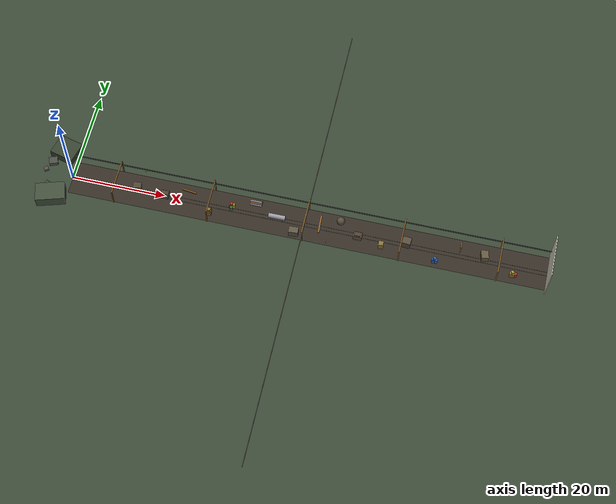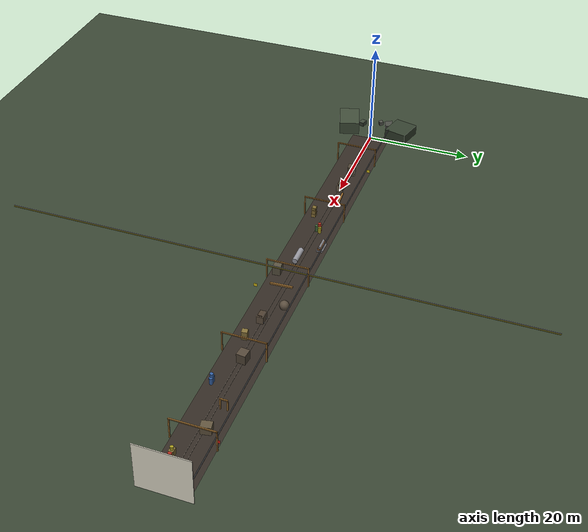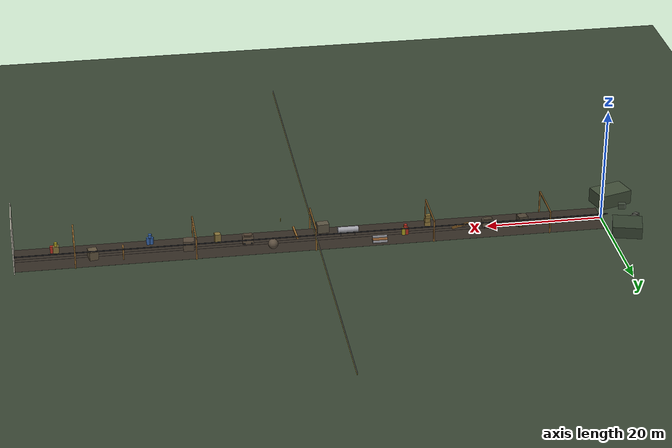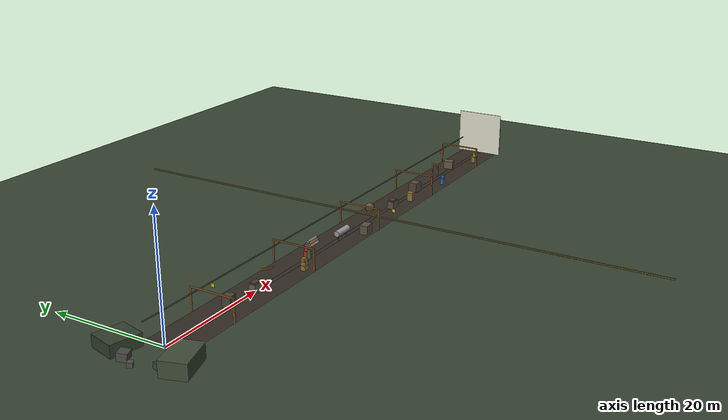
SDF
<sdf version="1.7">
 <world name="default">
  <model name="rock_pile_01">
   <static>1</static>
   <link name="link">
    <collision name="c"><geometry><box><size>1.6 1.4 1.8</size></box></geometry></collision>
    <visual name="v">
     <geometry><box><size>1.6 1.4 1.8</size></box></geometry>
     <material><ambient>0.25 0.22 0.18 1</ambient><diffuse>0.30 0.26 0.20 1</diffuse></material>
    </visual>
   </link>
   <pose>14.0 0.3 0.9 0 0 0.15</pose>
  </model>
  <model name="mine_cart_01">
   <static>1</static>
   <link name="link">
    <collision name="cart_body">
     <pose>0 0 0.7 0 0 0</pose>
     <geometry><box><size>1.8 1.2 1.4</size></box></geometry>
    </collision>
    <visual name="cart_body_v">
     <pose>0 0 0.7 0 0 0</pose>
     <geometry><box><size>1.8 1.2 1.4</size></box></geometry>
     <material><ambient>0.35 0.30 0.25 1</ambient><diffuse>0.40 0.35 0.28 1</diffuse></material>
    </visual>
    <visual name="ore_load">
     <pose>0 0 1.5 0 0 0</pose>
     <geometry><box><size>1.5 0.9 0.2</size></box></geometry>
     <material><ambient>0.20 0.18 0.15 1</ambient><diffuse>0.28 0.24 0.18 1</diffuse></material>
    </visual>
    <collision name="ore_c">
     <pose>0 0 1.5 0 0 0</pose>
     <geometry><box><size>1.5 0.9 0.2</size></box></geometry>
    </collision>
    <visual name="wheel_fl">
     <pose>0.6 0.65 0.15 1.5708 0 0</pose>
     <geometry><cylinder><radius>0.15</radius><length>0.08</length></cylinder></geometry>
     <material><ambient>0.15 0.15 0.15 1</ambient></material>
    </visual>
    <visual name="wheel_fr">
     <pose>0.6 -0.65 0.15 1.5708 0 0</pose>
     <geometry><cylinder><radius>0.15</radius><length>0.08</length></cylinder></geometry>
     <material><ambient>0.15 0.15 0.15 1</ambient></material>
    </visual>
    <visual name="wheel_rl">
     <pose>-0.6 0.65 0.15 1.5708 0 0</pose>
     <geometry><cylinder><radius>0.15</radius><length>0.08</length></cylinder></geometry>
     <material><ambient>0.15 0.15 0.15 1</ambient></material>
    </visual>
    <visual name="wheel_rr">
     <pose>-0.6 -0.65 0.15 1.5708 0 0</pose>
     <geometry><cylinder><radius>0.15</radius><length>0.08</length></cylinder></geometry>
     <material><ambient>0.15 0.15 0.15 1</ambient></material>
    </visual>
   </link>
   <pose>20.0 0.0 0.0 0 0 0</pose>
  </model>
  <model name="timber_beam_01">
   <static>1</static>
   <link name="link">
    <collision name="c"><geometry><box><size>3.0 0.30 0.30</size></box></geometry></collision>
    <visual name="v">
     <geometry><box><size>3.0 0.30 0.30</size></box></geometry>
     <material><ambient>0.45 0.30 0.12 1</ambient><diffuse>0.55 0.38 0.15 1</diffuse></material>
    </visual>
   </link>
   <pose>25.0 1.5 1.4 0 0.25 0</pose>
  </model>
  <model name="crate_stack_01">
   <static>1</static>
   <link name="link">
    <collision name="c1">
     <pose>0 0 0.4 0 0 0</pose>
     <geometry><box><size>1.0 0.8 0.8</size></box></geometry>
    </collision>
    <visual name="v1">
     <pose>0 0 0.4 0 0 0</pose>
     <geometry><box><size>1.0 0.8 0.8</size></box></geometry>
     <material><ambient>0.50 0.42 0.20 1</ambient><diffuse>0.55 0.45 0.22 1</diffuse></material>
    </visual>
    <collision name="c2">
     <pose>0.05 0.03 1.1 0 0 0.05</pose>
     <geometry><box><size>0.95 0.75 0.8</size></box></geometry>
    </collision>
    <visual name="v2">
     <pose>0.05 0.03 1.1 0 0 0.05</pose>
     <geometry><box><size>0.95 0.75 0.8</size></box></geometry>
     <material><ambient>0.48 0.40 0.18 1</ambient><diffuse>0.52 0.43 0.20 1</diffuse></material>
    </visual>
    <collision name="c3">
     <pose>-0.05 0.05 1.75 0 0 -0.08</pose>
     <geometry><box><size>0.85 0.7 0.5</size></box></geometry>
    </collision>
    <visual name="v3">
     <pose>-0.05 0.05 1.75 0 0 -0.08</pose>
     <geometry><box><size>0.85 0.7 0.5</size></box></geometry>
     <material><ambient>0.45 0.38 0.16 1</ambient><diffuse>0.50 0.42 0.19 1</diffuse></material>
    </visual>
   </link>
   <pose>30.0 -2.0 0.0 0 0 0</pose>
  </model>
  <model name="barrel_cluster_01">
   <static>1</static>
   <link name="link">
    <collision name="b1">
     <pose>0 0 0.6 0 0 0</pose>
     <geometry><cylinder><radius>0.32</radius><length>1.2</length></cylinder></geometry>
    </collision>
    <visual name="b1v">
     <pose>0 0 0.6 0 0 0</pose>
     <geometry><cylinder><radius>0.32</radius><length>1.2</length></cylinder></geometry>
     <material><ambient>0.60 0.15 0.10 1</ambient><diffuse>0.70 0.18 0.12 1</diffuse></material>
    </visual>
    <collision name="b2">
     <pose>0.58 0.15 0.6 0 0 0</pose>
     <geometry><cylinder><radius>0.32</radius><length>1.2</length></cylinder></geometry>
    </collision>
    <visual name="b2v">
     <pose>0.58 0.15 0.6 0 0 0</pose>
     <geometry><cylinder><radius>0.32</radius><length>1.2</length></cylinder></geometry>
     <material><ambient>0.55 0.55 0.10 1</ambient><diffuse>0.65 0.60 0.12 1</diffuse></material>
    </visual>
    <collision name="b3">
     <pose>0.25 -0.50 0.6 0 0 0</pose>
     <geometry><cylinder><radius>0.32</radius><length>1.2</length></cylinder></geometry>
    </collision>
    <visual name="b3v">
     <pose>0.25 -0.50 0.6 0 0 0</pose>
     <geometry><cylinder><radius>0.32</radius><length>1.2</length></cylinder></geometry>
     <material><ambient>0.20 0.35 0.20 1</ambient><diffuse>0.25 0.40 0.22 1</diffuse></material>
    </visual>
    <collision name="b4">
     <pose>0.25 0.0 1.5 0 0 0</pose>
     <geometry><cylinder><radius>0.30</radius><length>0.6</length></cylinder></geometry>
    </collision>
    <visual name="b4v">
     <pose>0.25 0.0 1.5 0 0 0</pose>
     <geometry><cylinder><radius>0.30</radius><length>0.6</length></cylinder></geometry>
     <material><ambient>0.60 0.15 0.10 1</ambient><diffuse>0.70 0.18 0.12 1</diffuse></material>
    </visual>
   </link>
   <pose>34.0 0.5 0.0 0 0 0</pose>
  </model>
  <model name="pipe_stack_01">
   <static>1</static>
   <link name="link">
    <collision name="p1">
     <pose>0 -0.40 0.22 0 1.5708 0</pose>
     <geometry><cylinder><radius>0.22</radius><length>2.5</length></cylinder></geometry>
    </collision>
    <visual name="p1v">
     <pose>0 -0.40 0.22 0 1.5708 0</pose>
     <geometry><cylinder><radius>0.22</radius><length>2.5</length></cylinder></geometry>
     <material><ambient>0.40 0.40 0.42 1</ambient><diffuse>0.50 0.50 0.52 1</diffuse></material>
    </visual>
    <collision name="p2">
     <pose>0 0.0 0.22 0 1.5708 0</pose>
     <geometry><cylinder><radius>0.22</radius><length>2.5</length></cylinder></geometry>
    </collision>
    <visual name="p2v">
     <pose>0 0.0 0.22 0 1.5708 0</pose>
     <geometry><cylinder><radius>0.22</radius><length>2.5</length></cylinder></geometry>
     <material><ambient>0.40 0.40 0.42 1</ambient><diffuse>0.50 0.50 0.52 1</diffuse></material>
    </visual>
    <collision name="p3">
     <pose>0 0.40 0.22 0 1.5708 0</pose>
     <geometry><cylinder><radius>0.22</radius><length>2.5</length></cylinder></geometry>
    </collision>
    <visual name="p3v">
     <pose>0 0.40 0.22 0 1.5708 0</pose>
     <geometry><cylinder><radius>0.22</radius><length>2.5</length></cylinder></geometry>
     <material><ambient>0.40 0.40 0.42 1</ambient><diffuse>0.50 0.50 0.52 1</diffuse></material>
    </visual>
    <collision name="p4">
     <pose>0 -0.20 0.60 0 1.5708 0</pose>
     <geometry><cylinder><radius>0.22</radius><length>2.5</length></cylinder></geometry>
    </collision>
    <visual name="p4v">
     <pose>0 -0.20 0.60 0 1.5708 0</pose>
     <geometry><cylinder><radius>0.22</radius><length>2.5</length></cylinder></geometry>
     <material><ambient>0.45 0.30 0.15 1</ambient><diffuse>0.55 0.35 0.18 1</diffuse></material>
    </visual>
    <collision name="p5">
     <pose>0 0.20 0.60 0 1.5708 0</pose>
     <geometry><cylinder><radius>0.22</radius><length>2.5</length></cylinder></geometry>
    </collision>
    <visual name="p5v">
     <pose>0 0.20 0.60 0 1.5708 0</pose>
     <geometry><cylinder><radius>0.22</radius><length>2.5</length></cylinder></geometry>
     <material><ambient>0.45 0.30 0.15 1</ambient><diffuse>0.55 0.35 0.18 1</diffuse></material>
    </visual>
    <collision name="p6">
     <pose>0 0.0 0.98 0 1.5708 0</pose>
     <geometry><cylinder><radius>0.22</radius><length>2.5</length></cylinder></geometry>
    </collision>
    <visual name="p6v">
     <pose>0 0.0 0.98 0 1.5708 0</pose>
     <geometry><cylinder><radius>0.22</radius><length>2.5</length></cylinder></geometry>
     <material><ambient>0.40 0.40 0.42 1</ambient><diffuse>0.50 0.50 0.52 1</diffuse></material>
    </visual>
   </link>
   <pose>39.0 2.5 0.0 0 0 0</pose>
  </model>
  <model name="vent_duct_01">
   <static>1</static>
   <link name="link">
    <collision name="c">
     <pose>0 0 0 0 1.5708 0</pose>
     <geometry><cylinder><radius>0.50</radius><length>3.5</length></cylinder></geometry>
    </collision>
    <visual name="v">
     <pose>0 0 0 0 1.5708 0</pose>
     <geometry><cylinder><radius>0.50</radius><length>3.5</length></cylinder></geometry>
     <material><ambient>0.50 0.50 0.52 1</ambient><diffuse>0.60 0.60 0.63 1</diffuse></material>
    </visual>
    <visual name="bracket1">
     <pose>-1.2 0 -0.6 0 0 0</pose>
     <geometry><box><size>0.10 0.10 1.2</size></box></geometry>
     <material><ambient>0.30 0.30 0.32 1</ambient></material>
    </visual>
    <collision name="br1">
     <pose>-1.2 0 -0.6 0 0 0</pose>
     <geometry><box><size>0.10 0.10 1.2</size></box></geometry>
    </collision>
    <visual name="bracket2">
     <pose>1.2 0 -0.6 0 0 0</pose>
     <geometry><box><size>0.10 0.10 1.2</size></box></geometry>
     <material><ambient>0.30 0.30 0.32 1</ambient></material>
    </visual>
    <collision name="br2">
     <pose>1.2 0 -0.6 0 0 0</pose>
     <geometry><box><size>0.10 0.10 1.2</size></box></geometry>
    </collision>
   </link>
   <pose>44.0 -0.2 1.3 0 0 0</pose>
  </model>
  <model name="rubble_01">
   <static>1</static>
   <link name="link">
    <collision name="c"><geometry><box><size>2.0 1.4 1.6</size></box></geometry></collision>
    <visual name="v">
     <geometry><box><size>2.0 1.4 1.6</size></box></geometry>
     <material><ambient>0.30 0.28 0.22 1</ambient><diffuse>0.35 0.32 0.25 1</diffuse></material>
    </visual>
   </link>
   <pose>48.0 -2.5 0.8 0 0 0.08</pose>
  </model>
  <model name="timber_beam_02">
   <static>1</static>
   <link name="link">
    <collision name="c"><geometry><box><size>0.30 4.0 0.30</size></box></geometry></collision>
    <visual name="v">
     <geometry><box><size>0.30 4.0 0.30</size></box></geometry>
     <material><ambient>0.50 0.35 0.15 1</ambient><diffuse>0.60 0.42 0.18 1</diffuse></material>
    </visual>
   </link>
   <pose>53.0 0.0 1.5 0 0 0.05</pose>
  </model>
  <model name="rock_boulder_01">
   <static>1</static>
   <link name="link">
    <collision name="c"><geometry><sphere><radius>0.85</radius></sphere></geometry></collision>
    <visual name="v">
     <geometry><sphere><radius>0.85</radius></sphere></geometry>
     <material><ambient>0.28 0.25 0.20 1</ambient><diffuse>0.35 0.30 0.24 1</diffuse></material>
    </visual>
   </link>
   <pose>57.0 2.0 0.85 0 0 0</pose>
  </model>
  <model name="mine_cart_02">
   <static>1</static>
   <link name="link">
    <collision name="cart_body">
     <pose>0 0 0.7 0 0 0</pose>
     <geometry><box><size>1.8 1.2 1.4</size></box></geometry>
    </collision>
    <visual name="cart_body_v">
     <pose>0 0 0.7 0 0 0</pose>
     <geometry><box><size>1.8 1.2 1.4</size></box></geometry>
     <material><ambient>0.32 0.28 0.22 1</ambient><diffuse>0.38 0.32 0.25 1</diffuse></material>
    </visual>
    <visual name="ore">
     <pose>0 0 1.5 0 0 0</pose>
     <geometry><box><size>1.4 0.9 0.2</size></box></geometry>
     <material><ambient>0.22 0.18 0.14 1</ambient><diffuse>0.30 0.24 0.18 1</diffuse></material>
    </visual>
    <collision name="ore_c">
     <pose>0 0 1.5 0 0 0</pose>
     <geometry><box><size>1.4 0.9 0.2</size></box></geometry>
    </collision>
    <visual name="wfl">
     <pose>0.6 0.65 0.15 1.5708 0 0</pose>
     <geometry><cylinder><radius>0.15</radius><length>0.08</length></cylinder></geometry>
     <material><ambient>0.15 0.15 0.15 1</ambient></material>
    </visual>
    <visual name="wfr">
     <pose>0.6 -0.65 0.15 1.5708 0 0</pose>
     <geometry><cylinder><radius>0.15</radius><length>0.08</length></cylinder></geometry>
     <material><ambient>0.15 0.15 0.15 1</ambient></material>
    </visual>
    <visual name="wrl">
     <pose>-0.6 0.65 0.15 1.5708 0 0</pose>
     <geometry><cylinder><radius>0.15</radius><length>0.08</length></cylinder></geometry>
     <material><ambient>0.15 0.15 0.15 1</ambient></material>
    </visual>
    <visual name="wrr">
     <pose>-0.6 -0.65 0.15 1.5708 0 0</pose>
     <geometry><cylinder><radius>0.15</radius><length>0.08</length></cylinder></geometry>
     <material><ambient>0.15 0.15 0.15 1</ambient></material>
    </visual>
   </link>
   <pose>61.0 -0.5 0.0 0 0 0</pose>
  </model>
  <model name="crate_02">
   <static>1</static>
   <link name="link">
    <collision name="c">
     <pose>0 0 0.8 0 0 0</pose>
     <geometry><box><size>1.0 1.0 1.6</size></box></geometry>
    </collision>
    <visual name="v">
     <pose>0 0 0.8 0 0 0</pose>
     <geometry><box><size>1.0 1.0 1.6</size></box></geometry>
     <material><ambient>0.45 0.38 0.18 1</ambient><diffuse>0.52 0.44 0.22 1</diffuse></material>
    </visual>
   </link>
   <pose>66.0 -1.5 0.0 0 0 0.12</pose>
  </model>
  <model name="rock_pile_02">
   <static>1</static>
   <link name="link">
    <collision name="c"><geometry><box><size>1.8 1.6 1.8</size></box></geometry></collision>
    <visual name="v">
     <geometry><box><size>1.8 1.6 1.8</size></box></geometry>
     <material><ambient>0.28 0.24 0.18 1</ambient><diffuse>0.33 0.28 0.22 1</diffuse></material>
    </visual>
   </link>
   <pose>71.0 0.2 0.9 0 0 -0.1</pose>
  </model>
  <model name="barrel_pair_01">
   <static>1</static>
   <link name="link">
    <collision name="b1">
     <pose>0 0 0.6 0 0 0</pose>
     <geometry><cylinder><radius>0.32</radius><length>1.2</length></cylinder></geometry>
    </collision>
    <visual name="b1v">
     <pose>0 0 0.6 0 0 0</pose>
     <geometry><cylinder><radius>0.32</radius><length>1.2</length></cylinder></geometry>
     <material><ambient>0.15 0.30 0.55 1</ambient><diffuse>0.20 0.38 0.65 1</diffuse></material>
    </visual>
    <collision name="b2">
     <pose>0.58 0.0 0.6 0 0 0</pose>
     <geometry><cylinder><radius>0.32</radius><length>1.2</length></cylinder></geometry>
    </collision>
    <visual name="b2v">
     <pose>0.58 0.0 0.6 0 0 0</pose>
     <geometry><cylinder><radius>0.32</radius><length>1.2</length></cylinder></geometry>
     <material><ambient>0.15 0.30 0.55 1</ambient><diffuse>0.20 0.38 0.65 1</diffuse></material>
    </visual>
    <collision name="b3">
     <pose>0.28 0.0 1.55 0 0 0</pose>
     <geometry><cylinder><radius>0.30</radius><length>0.6</length></cylinder></geometry>
    </collision>
    <visual name="b3v">
     <pose>0.28 0.0 1.55 0 0 0</pose>
     <geometry><cylinder><radius>0.30</radius><length>0.6</length></cylinder></geometry>
     <material><ambient>0.15 0.30 0.55 1</ambient><diffuse>0.20 0.38 0.65 1</diffuse></material>
    </visual>
   </link>
   <pose>77.0 -2.5 0.0 0 0 0</pose>
  </model>
  <model name="timber_frame_01">
   <static>1</static>
   <link name="link">
    <collision name="lp">
     <pose>0 -0.6 1.0 0 0 0</pose>
     <geometry><box><size>0.20 0.20 2.0</size></box></geometry>
    </collision>
    <visual name="lpv">
     <pose>0 -0.6 1.0 0 0 0</pose>
     <geometry><box><size>0.20 0.20 2.0</size></box></geometry>
     <material><ambient>0.50 0.35 0.15 1</ambient><diffuse>0.60 0.42 0.18 1</diffuse></material>
    </visual>
    <collision name="rp">
     <pose>0 0.6 1.0 0 0 0</pose>
     <geometry><box><size>0.20 0.20 2.0</size></box></geometry>
    </collision>
    <visual name="rpv">
     <pose>0 0.6 1.0 0 0 0</pose>
     <geometry><box><size>0.20 0.20 2.0</size></box></geometry>
     <material><ambient>0.50 0.35 0.15 1</ambient><diffuse>0.60 0.42 0.18 1</diffuse></material>
    </visual>
    <collision name="cb">
     <pose>0 0.0 2.05 0 0 0</pose>
     <geometry><box><size>0.20 1.4 0.20</size></box></geometry>
    </collision>
    <visual name="cbv">
     <pose>0 0.0 2.05 0 0 0</pose>
     <geometry><box><size>0.20 1.4 0.20</size></box></geometry>
     <material><ambient>0.50 0.35 0.15 1</ambient><diffuse>0.60 0.42 0.18 1</diffuse></material>
    </visual>
   </link>
   <pose>82.0 1.5 0.0 0 0 0</pose>
  </model>
  <model name="rubble_02">
   <static>1</static>
   <link name="link">
    <collision name="c"><geometry><box><size>1.5 1.8 1.5</size></box></geometry></collision>
    <visual name="v">
     <geometry><box><size>1.5 1.8 1.5</size></box></geometry>
     <material><ambient>0.32 0.28 0.20 1</ambient><diffuse>0.38 0.33 0.24 1</diffuse></material>
    </visual>
   </link>
   <pose>87.0 0.8 0.75 0 0 0.2</pose>
  </model>
  <model name="crate_barrel_01">
   <static>1</static>
   <link name="link">
    <collision name="crate">
     <pose>0 0 0.6 0 0 0</pose>
     <geometry><box><size>1.0 0.8 1.2</size></box></geometry>
    </collision>
    <visual name="cratev">
     <pose>0 0 0.6 0 0 0</pose>
     <geometry><box><size>1.0 0.8 1.2</size></box></geometry>
     <material><ambient>0.45 0.38 0.18 1</ambient><diffuse>0.52 0.44 0.22 1</diffuse></material>
    </visual>
    <collision name="barrel">
     <pose>0.7 0.0 0.6 0 0 0</pose>
     <geometry><cylinder><radius>0.30</radius><length>1.2</length></cylinder></geometry>
    </collision>
    <visual name="barrelv">
     <pose>0.7 0.0 0.6 0 0 0</pose>
     <geometry><cylinder><radius>0.30</radius><length>1.2</length></cylinder></geometry>
     <material><ambient>0.60 0.15 0.10 1</ambient><diffuse>0.70 0.18 0.12 1</diffuse></material>
    </visual>
    <collision name="top_b">
     <pose>0 0 1.5 0 0 0</pose>
     <geometry><cylinder><radius>0.28</radius><length>0.6</length></cylinder></geometry>
    </collision>
    <visual name="top_bv">
     <pose>0 0 1.5 0 0 0</pose>
     <geometry><cylinder><radius>0.28</radius><length>0.6</length></cylinder></geometry>
     <material><ambient>0.55 0.55 0.10 1</ambient><diffuse>0.65 0.60 0.12 1</diffuse></material>
    </visual>
   </link>
   <pose>93.0 -2.0 0.0 0 0 0</pose>
  </model>
  <model name="support_frame_10">
   <static>1</static>
   <link name="link">
    <visual name="left_post">
     <pose>0 -3.8 2.0 0 0 0</pose>
     <geometry><box><size>0.20 0.20 4.0</size></box></geometry>
     <material><ambient>0.50 0.35 0.15 1</ambient><diffuse>0.60 0.42 0.18 1</diffuse></material>
    </visual>
    <visual name="right_post">
     <pose>0 3.8 2.0 0 0 0</pose>
     <geometry><box><size>0.20 0.20 4.0</size></box></geometry>
     <material><ambient>0.50 0.35 0.15 1</ambient><diffuse>0.60 0.42 0.18 1</diffuse></material>
    </visual>
    <visual name="crossbeam">
     <pose>0 0.0 3.9 0 0 0</pose>
     <geometry><box><size>0.20 7.8 0.20</size></box></geometry>
     <material><ambient>0.50 0.35 0.15 1</ambient><diffuse>0.60 0.42 0.18 1</diffuse></material>
    </visual>
   </link>
   <pose>10.0 0 0 0 0 0</pose>
  </model>
  <model name="support_frame_30">
   <static>1</static>
   <link name="link">
    <visual name="left_post">
     <pose>0 -3.8 2.0 0 0 0</pose>
     <geometry><box><size>0.20 0.20 4.0</size></box></geometry>
     <material><ambient>0.48 0.33 0.14 1</ambient><diffuse>0.58 0.40 0.17 1</diffuse></material>
    </visual>
    <visual name="right_post">
     <pose>0 3.8 2.0 0 0 0</pose>
     <geometry><box><size>0.20 0.20 4.0</size></box></geometry>
     <material><ambient>0.48 0.33 0.14 1</ambient><diffuse>0.58 0.40 0.17 1</diffuse></material>
    </visual>
    <visual name="crossbeam">
     <pose>0 0.0 3.9 0 0 0</pose>
     <geometry><box><size>0.20 7.8 0.20</size></box></geometry>
     <material><ambient>0.48 0.33 0.14 1</ambient><diffuse>0.58 0.40 0.17 1</diffuse></material>
    </visual>
   </link>
   <pose>30.0 0 0 0 0 0</pose>
  </model>
  <model name="support_frame_50">
   <static>1</static>
   <link name="link">
    <visual name="left_post">
     <pose>0 -3.8 2.0 0 0 0</pose>
     <geometry><box><size>0.20 0.20 4.0</size></box></geometry>
     <material><ambient>0.50 0.35 0.15 1</ambient><diffuse>0.60 0.42 0.18 1</diffuse></material>
    </visual>
    <visual name="right_post">
     <pose>0 3.8 2.0 0 0 0</pose>
     <geometry><box><size>0.20 0.20 4.0</size></box></geometry>
     <material><ambient>0.50 0.35 0.15 1</ambient><diffuse>0.60 0.42 0.18 1</diffuse></material>
    </visual>
    <visual name="crossbeam">
     <pose>0 0.0 3.9 0 0 0</pose>
     <geometry><box><size>0.20 7.8 0.20</size></box></geometry>
     <material><ambient>0.50 0.35 0.15 1</ambient><diffuse>0.60 0.42 0.18 1</diffuse></material>
    </visual>
   </link>
   <pose>50.0 0 0 0 0 0</pose>
  </model>
  <model name="support_frame_70">
   <static>1</static>
   <link name="link">
    <visual name="left_post">
     <pose>0 -3.8 2.0 0 0 0</pose>
     <geometry><box><size>0.20 0.20 4.0</size></box></geometry>
     <material><ambient>0.48 0.33 0.14 1</ambient><diffuse>0.58 0.40 0.17 1</diffuse></material>
    </visual>
    <visual name="right_post">
     <pose>0 3.8 2.0 0 0 0</pose>
     <geometry><box><size>0.20 0.20 4.0</size></box></geometry>
     <material><ambient>0.48 0.33 0.14 1</ambient><diffuse>0.58 0.40 0.17 1</diffuse></material>
    </visual>
    <visual name="crossbeam">
     <pose>0 0.0 3.9 0 0 0</pose>
     <geometry><box><size>0.20 7.8 0.20</size></box></geometry>
     <material><ambient>0.48 0.33 0.14 1</ambient><diffuse>0.58 0.40 0.17 1</diffuse></material>
    </visual>
   </link>
   <pose>70.0 0 0 0 0 0</pose>
  </model>
  <model name="support_frame_90">
   <static>1</static>
   <link name="link">
    <visual name="left_post">
     <pose>0 -3.8 2.0 0 0 0</pose>
     <geometry><box><size>0.20 0.20 4.0</size></box></geometry>
     <material><ambient>0.50 0.35 0.15 1</ambient><diffuse>0.60 0.42 0.18 1</diffuse></material>
    </visual>
    <visual name="right_post">
     <pose>0 3.8 2.0 0 0 0</pose>
     <geometry><box><size>0.20 0.20 4.0</size></box></geometry>
     <material><ambient>0.50 0.35 0.15 1</ambient><diffuse>0.60 0.42 0.18 1</diffuse></material>
    </visual>
    <visual name="crossbeam">
     <pose>0 0.0 3.9 0 0 0</pose>
     <geometry><box><size>0.20 7.8 0.20</size></box></geometry>
     <material><ambient>0.50 0.35 0.15 1</ambient><diffuse>0.60 0.42 0.18 1</diffuse></material>
    </visual>
   </link>
   <pose>90.0 0 0 0 0 0</pose>
  </model>
  <model name="rail_left">
   <static>1</static>
   <link name="link">
    <visual name="v">
     <pose>0 0 0.03 0 0 0</pose>
     <geometry><box><size>100.0 0.08 0.06</size></box></geometry>
     <material><ambient>0.45 0.40 0.35 1</ambient><diffuse>0.55 0.50 0.45 1</diffuse></material>
    </visual>
   </link>
   <pose>50.0 -0.40 0.0 0 0 0</pose>
  </model>
  <model name="rail_right">
   <static>1</static>
   <link name="link">
    <visual name="v">
     <pose>0 0 0.03 0 0 0</pose>
     <geometry><box><size>100.0 0.08 0.06</size></box></geometry>
     <material><ambient>0.45 0.40 0.35 1</ambient><diffuse>0.55 0.50 0.45 1</diffuse></material>
    </visual>
   </link>
   <pose>50.0 0.40 0.0 0 0 0</pose>
  </model>
  <model name="sleepers">
   <static>1</static>
   <link name="link">
    <visual name="s1">
     <pose>-40 0 0.015 0 0 0</pose>
     <geometry><box><size>0.15 1.2 0.03</size></box></geometry>
     <material><ambient>0.40 0.28 0.12 1</ambient><diffuse>0.50 0.35 0.15 1</diffuse></material>
    </visual>
    <visual name="s2">
     <pose>-38 0 0.015 0 0 0</pose>
     <geometry><box><size>0.15 1.2 0.03</size></box></geometry>
     <material><ambient>0.40 0.28 0.12 1</ambient><diffuse>0.50 0.35 0.15 1</diffuse></material>
    </visual>
    <visual name="s3">
     <pose>-36 0 0.015 0 0 0</pose>
     <geometry><box><size>0.15 1.2 0.03</size></box></geometry>
     <material><ambient>0.40 0.28 0.12 1</ambient><diffuse>0.50 0.35 0.15 1</diffuse></material>
    </visual>
    <visual name="s4">
     <pose>-34 0 0.015 0 0 0</pose>
     <geometry><box><size>0.15 1.2 0.03</size></box></geometry>
     <material><ambient>0.40 0.28 0.12 1</ambient><diffuse>0.50 0.35 0.15 1</diffuse></material>
    </visual>
    <visual name="s5">
     <pose>-32 0 0.015 0 0 0</pose>
     <geometry><box><size>0.15 1.2 0.03</size></box></geometry>
     <material><ambient>0.40 0.28 0.12 1</ambient><diffuse>0.50 0.35 0.15 1</diffuse></material>
    </visual>
    <visual name="s6">
     <pose>-30 0 0.015 0 0 0</pose>
     <geometry><box><size>0.15 1.2 0.03</size></box></geometry>
     <material><ambient>0.40 0.28 0.12 1</ambient><diffuse>0.50 0.35 0.15 1</diffuse></material>
    </visual>
   </link>
   <pose>50.0 0 0 0 0 0</pose>
  </model>
  <model name="pipe_run_left">
   <static>1</static>
   <link name="link">
    <visual name="pipe1">
     <geometry><cylinder><radius>0.08</radius><length>100.0</length></cylinder></geometry>
     <cast_shadows>0</cast_shadows>
     <material><ambient>0.50 0.45 0.10 1</ambient><diffuse>0.60 0.55 0.15 1</diffuse></material>
    </visual>
    <visual name="pipe2">
     <pose>0 0.25 0 0 0 0</pose>
     <geometry><cylinder><radius>0.06</radius><length>100.0</length></cylinder></geometry>
     <cast_shadows>0</cast_shadows>
     <material><ambient>0.40 0.40 0.42 1</ambient><diffuse>0.50 0.50 0.52 1</diffuse></material>
    </visual>
   </link>
   <pose>50.0 -3.6 2.5 1.5708 0 0</pose>
  </model>
  <model name="cable_tray">
   <static>1</static>
   <link name="link">
    <visual name="tray">
     <geometry><box><size>100.0 0.20 0.08</size></box></geometry>
     <material><ambient>0.25 0.25 0.28 1</ambient><diffuse>0.35 0.35 0.38 1</diffuse></material>
    </visual>
    <visual name="cables">
     <pose>0 0 0.06 0 0 0</pose>
     <geometry><box><size>100.0 0.16 0.04</size></box></geometry>
     <material><ambient>0.10 0.10 0.10 1</ambient><diffuse>0.15 0.15 0.15 1</diffuse></material>
    </visual>
   </link>
   <pose>50.0 3.7 2.8 0 0 0</pose>
  </model>
  <model name="puddle_01">
   <static>1</static>
   <link name="link">
    <visual name="v">
     <geometry><box><size>2.5 1.8 0.005</size></box></geometry>
     <material><ambient>0.15 0.18 0.25 1</ambient><diffuse>0.18 0.22 0.30 1</diffuse></material>
    </visual>
   </link>
   <pose>22.0 -0.5 0.003 0 0 0.3</pose>
  </model>
  <model name="puddle_02">
   <static>1</static>
   <link name="link">
    <visual name="v">
     <geometry><box><size>3.0 2.0 0.005</size></box></geometry>
     <material><ambient>0.15 0.18 0.25 1</ambient><diffuse>0.18 0.22 0.30 1</diffuse></material>
    </visual>
   </link>
   <pose>55.0 1.0 0.003 0 0 -0.2</pose>
  </model>
  <model name="puddle_03">
   <static>1</static>
   <link name="link">
    <visual name="v">
     <geometry><box><size>2.0 2.5 0.005</size></box></geometry>
     <material><ambient>0.15 0.18 0.25 1</ambient><diffuse>0.18 0.22 0.30 1</diffuse></material>
    </visual>
   </link>
   <pose>80.0 -1.0 0.003 0 0 0.15</pose>
  </model>
  <model name="warning_sign_1">
   <static>1</static>
   <link name="link">
    <visual name="v">
     <geometry><box><size>0.02 0.6 0.6</size></box></geometry>
     <material><ambient>0.70 0.60 0.05 1</ambient><diffuse>0.85 0.75 0.10 1</diffuse></material>
    </visual>
   </link>
   <pose>15.0 3.95 2.0 0 0 0</pose>
  </model>
  <model name="warning_sign_2">
   <static>1</static>
   <link name="link">
    <visual name="v">
     <geometry><box><size>0.02 0.6 0.6</size></box></geometry>
     <material><ambient>0.70 0.60 0.05 1</ambient><diffuse>0.85 0.75 0.10 1</diffuse></material>
    </visual>
   </link>
   <pose>55.0 -3.95 2.0 0 0 0</pose>
  </model>
  <model name="warning_sign_3">
   <static>1</static>
   <link name="link">
    <visual name="v">
     <geometry><box><size>0.02 0.6 0.6</size></box></geometry>
     <material><ambient>0.70 0.10 0.05 1</ambient><diffuse>0.85 0.12 0.08 1</diffuse></material>
    </visual>
   </link>
   <pose>90.0 3.95 2.0 0 0 0</pose>
  </model>
  <physics type="ode">
   <max_step_size>0.001</max_step_size>
   <real_time_factor>1</real_time_factor>
   <real_time_update_rate>1000</real_time_update_rate>
  </physics>
  <model name="ground_plane">
   <static>1</static>
   <link name="ground_link">
    <collision name="ground_collision">
     <pose>50 0 -0.5 0 0 0</pose>
     <geometry><box><size>400 400 1.0</size></box></geometry>
     <max_contacts>100</max_contacts>
     <surface>
      <contact><ode><soft_cfm>0</soft_cfm><soft_erp>0.8</soft_erp></ode></contact>
      <bounce><restitution_coefficient>0</restitution_coefficient></bounce>
      <friction><ode><mu>50</mu><mu2>50</mu2></ode></friction>
     </surface>
    </collision>
    <visual name="ground_visual">
     <pose>50 0 -0.5 0 0 0</pose>
     <geometry><box><size>400 400 1.0</size></box></geometry>
     <material>
      <ambient>0.18 0.22 0.16 1</ambient>
      <diffuse>0.22 0.27 0.20 1</diffuse>
      <specular>0.04 0.05 0.04 1</specular>
     </material>
    </visual>
   </link>
  </model>
  <model name="rock_mound_left">
   <static>1</static>
   <link name="link">
    <visual name="v">
     <geometry><box><size>6.0 4.0 2.5</size></box></geometry>
     <material>
      <ambient>0.20 0.24 0.18 1</ambient>
      <diffuse>0.25 0.30 0.22 1</diffuse>
      <specular>0.05 0.06 0.04 1</specular>
     </material>
    </visual>
   </link>
   <pose>-3.0 -5.5 1.25 0 0 0.3</pose>
  </model>
  <model name="rock_mound_right">
   <static>1</static>
   <link name="link">
    <visual name="v">
     <geometry><box><size>5.0 4.5 2.0</size></box></geometry>
     <material>
      <ambient>0.16 0.20 0.15 1</ambient>
      <diffuse>0.20 0.25 0.18 1</diffuse>
      <specular>0.04 0.05 0.03 1</specular>
     </material>
    </visual>
   </link>
   <pose>-3.0 5.5 1.0 0 0 -0.25</pose>
  </model>
  <model name="boulder_a">
   <static>1</static>
   <link name="link">
    <visual name="v">
     <geometry><box><size>1.8 1.5 1.2</size></box></geometry>
     <material><ambient>0.22 0.23 0.21 1</ambient><diffuse>0.28 0.29 0.26 1</diffuse></material>
    </visual>
   </link>
   <pose>-5.0 2.5 0.6 0.1 0.05 0.4</pose>
  </model>
  <model name="boulder_b">
   <static>1</static>
   <link name="link">
    <visual name="v">
     <geometry><box><size>1.2 1.0 0.9</size></box></geometry>
     <material><ambient>0.19 0.22 0.17 1</ambient><diffuse>0.24 0.28 0.22 1</diffuse></material>
    </visual>
   </link>
   <pose>-4.5 -3.0 0.45 0 0.1 -0.3</pose>
  </model>
  <model name="boulder_c">
   <static>1</static>
   <link name="link">
    <visual name="v">
     <geometry><box><size>0.9 0.8 0.7</size></box></geometry>
     <material><ambient>0.24 0.25 0.22 1</ambient><diffuse>0.30 0.31 0.28 1</diffuse></material>
    </visual>
   </link>
   <pose>-6.0 0.5 0.35 0.05 0 0.6</pose>
  </model>
  <scene>
   <ambient>0.45 0.46 0.44 1</ambient>
   <background>0.18 0.20 0.16 1</background>
   <shadows>0</shadows>
  </scene>
  <light name="sun" type="directional">
   <cast_shadows>0</cast_shadows>
   <pose>50 0 50 0 0 0</pose>
   <diffuse>1.0 0.95 0.85 1</diffuse>
   <specular>0.5 0.48 0.40 1</specular>
   <attenuation>
    <range>1000</range>
    <constant>0.9</constant>
    <linear>0.01</linear>
    <quadratic>0.001</quadratic>
   </attenuation>
   <direction>-0.3 0.0 -0.95</direction>
  </light>
  <light name="tunnel_fill_fwd" type="directional">
   <cast_shadows>0</cast_shadows>
   <pose>0 0 3 0 0 0</pose>
   <diffuse>1.0 0.95 0.82 1</diffuse>
   <specular>0.50 0.48 0.40 1</specular>
   <attenuation>
    <range>1000</range>
    <constant>0.9</constant>
    <linear>0.01</linear>
    <quadratic>0.001</quadratic>
   </attenuation>
   <direction>1.0 0.0 -0.25</direction>
  </light>
  <light name="tunnel_fill_rev" type="directional">
   <cast_shadows>0</cast_shadows>
   <pose>100 0 3 0 0 0</pose>
   <diffuse>1.0 0.95 0.82 1</diffuse>
   <specular>0.50 0.48 0.40 1</specular>
   <attenuation>
    <range>1000</range>
    <constant>0.9</constant>
    <linear>0.01</linear>
    <quadratic>0.001</quadratic>
   </attenuation>
   <direction>-1.0 0.0 -0.25</direction>
  </light>
  <light name="tunnel_fill_down" type="directional">
   <cast_shadows>0</cast_shadows>
   <pose>50 0 10 0 0 0</pose>
   <diffuse>0.90 0.86 0.75 1</diffuse>
   <specular>0.35 0.33 0.28 1</specular>
   <attenuation>
    <range>1000</range>
    <constant>0.9</constant>
    <linear>0.01</linear>
    <quadratic>0.001</quadratic>
   </attenuation>
   <direction>0.0 0.0 -1.0</direction>
  </light>
  <light name="lamp_05" type="point">
   <cast_shadows>0</cast_shadows>
   <pose>5.0 0.0 3.8 0 0 0</pose>
   <diffuse>2.0 1.85 1.40 1</diffuse>
   <specular>0.60 0.55 0.40 1</specular>
   <attenuation>
    <range>40</range>
    <constant>0.05</constant>
    <linear>0.01</linear>
    <quadratic>0.001</quadratic>
   </attenuation>
  </light>
  <light name="lamp_10" type="point">
   <cast_shadows>0</cast_shadows>
   <pose>10.0 3.5 3.5 0 0 0</pose>
   <diffuse>2.0 1.85 1.40 1</diffuse>
   <specular>0.60 0.55 0.40 1</specular>
   <attenuation>
    <range>40</range>
    <constant>0.05</constant>
    <linear>0.01</linear>
    <quadratic>0.001</quadratic>
   </attenuation>
  </light>
  <light name="lamp_15" type="point">
   <cast_shadows>0</cast_shadows>
   <pose>15.0 -3.5 3.5 0 0 0</pose>
   <diffuse>2.0 1.85 1.40 1</diffuse>
   <specular>0.60 0.55 0.40 1</specular>
   <attenuation>
    <range>40</range>
    <constant>0.05</constant>
    <linear>0.01</linear>
    <quadratic>0.001</quadratic>
   </attenuation>
  </light>
  <light name="lamp_20" type="point">
   <cast_shadows>0</cast_shadows>
   <pose>20.0 3.5 3.5 0 0 0</pose>
   <diffuse>2.0 1.85 1.40 1</diffuse>
   <specular>0.60 0.55 0.40 1</specular>
   <attenuation>
    <range>40</range>
    <constant>0.05</constant>
    <linear>0.01</linear>
    <quadratic>0.001</quadratic>
   </attenuation>
  </light>
  <light name="lamp_25" type="point">
   <cast_shadows>0</cast_shadows>
   <pose>25.0 -3.5 3.5 0 0 0</pose>
   <diffuse>2.0 1.85 1.40 1</diffuse>
   <specular>0.60 0.55 0.40 1</specular>
   <attenuation>
    <range>40</range>
    <constant>0.05</constant>
    <linear>0.01</linear>
    <quadratic>0.001</quadratic>
   </attenuation>
  </light>
  <light name="lamp_30" type="point">
   <cast_shadows>0</cast_shadows>
   <pose>30.0 3.5 3.5 0 0 0</pose>
   <diffuse>2.0 1.85 1.40 1</diffuse>
   <specular>0.60 0.55 0.40 1</specular>
   <attenuation>
    <range>40</range>
    <constant>0.05</constant>
    <linear>0.01</linear>
    <quadratic>0.001</quadratic>
   </attenuation>
  </light>
  <light name="lamp_35" type="point">
   <cast_shadows>0</cast_shadows>
   <pose>35.0 -3.5 3.5 0 0 0</pose>
   <diffuse>2.0 1.85 1.40 1</diffuse>
   <specular>0.60 0.55 0.40 1</specular>
   <attenuation>
    <range>40</range>
    <constant>0.05</constant>
    <linear>0.01</linear>
    <quadratic>0.001</quadratic>
   </attenuation>
  </light>
  <light name="lamp_40" type="point">
   <cast_shadows>0</cast_shadows>
   <pose>40.0 3.5 3.5 0 0 0</pose>
   <diffuse>2.0 1.85 1.40 1</diffuse>
   <specular>0.60 0.55 0.40 1</specular>
   <attenuation>
    <range>40</range>
    <constant>0.05</constant>
    <linear>0.01</linear>
    <quadratic>0.001</quadratic>
   </attenuation>
  </light>
  <light name="lamp_45" type="point">
   <cast_shadows>0</cast_shadows>
   <pose>45.0 -3.5 3.5 0 0 0</pose>
   <diffuse>2.0 1.85 1.40 1</diffuse>
   <specular>0.60 0.55 0.40 1</specular>
   <attenuation>
    <range>40</range>
    <constant>0.05</constant>
    <linear>0.01</linear>
    <quadratic>0.001</quadratic>
   </attenuation>
  </light>
  <light name="lamp_50" type="point">
   <cast_shadows>0</cast_shadows>
   <pose>50.0 3.5 3.5 0 0 0</pose>
   <diffuse>2.0 1.85 1.40 1</diffuse>
   <specular>0.60 0.55 0.40 1</specular>
   <attenuation>
    <range>40</range>
    <constant>0.05</constant>
    <linear>0.01</linear>
    <quadratic>0.001</quadratic>
   </attenuation>
  </light>
  <light name="lamp_55" type="point">
   <cast_shadows>0</cast_shadows>
   <pose>55.0 -3.5 3.5 0 0 0</pose>
   <diffuse>2.0 1.85 1.40 1</diffuse>
   <specular>0.60 0.55 0.40 1</specular>
   <attenuation>
    <range>40</range>
    <constant>0.05</constant>
    <linear>0.01</linear>
    <quadratic>0.001</quadratic>
   </attenuation>
  </light>
  <light name="lamp_60" type="point">
   <cast_shadows>0</cast_shadows>
   <pose>60.0 3.5 3.5 0 0 0</pose>
   <diffuse>2.0 1.85 1.40 1</diffuse>
   <specular>0.60 0.55 0.40 1</specular>
   <attenuation>
    <range>40</range>
    <constant>0.05</constant>
    <linear>0.01</linear>
    <quadratic>0.001</quadratic>
   </attenuation>
  </light>
  <light name="lamp_65" type="point">
   <cast_shadows>0</cast_shadows>
   <pose>65.0 -3.5 3.5 0 0 0</pose>
   <diffuse>2.0 1.85 1.40 1</diffuse>
   <specular>0.60 0.55 0.40 1</specular>
   <attenuation>
    <range>40</range>
    <constant>0.05</constant>
    <linear>0.01</linear>
    <quadratic>0.001</quadratic>
   </attenuation>
  </light>
  <light name="lamp_70" type="point">
   <cast_shadows>0</cast_shadows>
   <pose>70.0 3.5 3.5 0 0 0</pose>
   <diffuse>2.0 1.85 1.40 1</diffuse>
   <specular>0.60 0.55 0.40 1</specular>
   <attenuation>
    <range>40</range>
    <constant>0.05</constant>
    <linear>0.01</linear>
    <quadratic>0.001</quadratic>
   </attenuation>
  </light>
  <light name="lamp_75" type="point">
   <cast_shadows>0</cast_shadows>
   <pose>75.0 -3.5 3.5 0 0 0</pose>
   <diffuse>2.0 1.85 1.40 1</diffuse>
   <specular>0.60 0.55 0.40 1</specular>
   <attenuation>
    <range>40</range>
    <constant>0.05</constant>
    <linear>0.01</linear>
    <quadratic>0.001</quadratic>
   </attenuation>
  </light>
  <light name="lamp_80" type="point">
   <cast_shadows>0</cast_shadows>
   <pose>80.0 3.5 3.5 0 0 0</pose>
   <diffuse>2.0 1.85 1.40 1</diffuse>
   <specular>0.60 0.55 0.40 1</specular>
   <attenuation>
    <range>40</range>
    <constant>0.05</constant>
    <linear>0.01</linear>
    <quadratic>0.001</quadratic>
   </attenuation>
  </light>
  <light name="lamp_85" type="point">
   <cast_shadows>0</cast_shadows>
   <pose>85.0 -3.5 3.5 0 0 0</pose>
   <diffuse>2.0 1.85 1.40 1</diffuse>
   <specular>0.60 0.55 0.40 1</specular>
   <attenuation>
    <range>40</range>
    <constant>0.05</constant>
    <linear>0.01</linear>
    <quadratic>0.001</quadratic>
   </attenuation>
  </light>
  <light name="lamp_90" type="point">
   <cast_shadows>0</cast_shadows>
   <pose>90.0 3.5 3.5 0 0 0</pose>
   <diffuse>2.0 1.85 1.40 1</diffuse>
   <specular>0.60 0.55 0.40 1</specular>
   <attenuation>
    <range>40</range>
    <constant>0.05</constant>
    <linear>0.01</linear>
    <quadratic>0.001</quadratic>
   </attenuation>
  </light>
  <light name="lamp_95" type="point">
   <cast_shadows>0</cast_shadows>
   <pose>95.0 0.0 3.8 0 0 0</pose>
   <diffuse>2.0 1.85 1.40 1</diffuse>
   <specular>0.60 0.55 0.40 1</specular>
   <attenuation>
    <range>40</range>
    <constant>0.05</constant>
    <linear>0.01</linear>
    <quadratic>0.001</quadratic>
   </attenuation>
  </light>
  <light name="fill_20" type="point">
   <cast_shadows>0</cast_shadows>
   <pose>20.0 0.0 2.0 0 0 0</pose>
   <diffuse>1.50 1.40 1.10 1</diffuse>
   <specular>0.40 0.38 0.28 1</specular>
   <attenuation>
    <range>30</range>
    <constant>0.05</constant>
    <linear>0.02</linear>
    <quadratic>0.002</quadratic>
   </attenuation>
  </light>
  <light name="fill_40" type="point">
   <cast_shadows>0</cast_shadows>
   <pose>40.0 0.0 2.0 0 0 0</pose>
   <diffuse>1.50 1.40 1.10 1</diffuse>
   <specular>0.40 0.38 0.28 1</specular>
   <attenuation>
    <range>30</range>
    <constant>0.05</constant>
    <linear>0.02</linear>
    <quadratic>0.002</quadratic>
   </attenuation>
  </light>
  <light name="fill_60" type="point">
   <cast_shadows>0</cast_shadows>
   <pose>60.0 0.0 2.0 0 0 0</pose>
   <diffuse>1.50 1.40 1.10 1</diffuse>
   <specular>0.40 0.38 0.28 1</specular>
   <attenuation>
    <range>30</range>
    <constant>0.05</constant>
    <linear>0.02</linear>
    <quadratic>0.002</quadratic>
   </attenuation>
  </light>
  <light name="fill_80" type="point">
   <cast_shadows>0</cast_shadows>
   <pose>80.0 0.0 2.0 0 0 0</pose>
   <diffuse>1.50 1.40 1.10 1</diffuse>
   <specular>0.40 0.38 0.28 1</specular>
   <attenuation>
    <range>30</range>
    <constant>0.05</constant>
    <linear>0.02</linear>
    <quadratic>0.002</quadratic>
   </attenuation>
  </light>
  <model name="tunnel_end_wall">
   <static>1</static>
   <link name="link">
    <collision name="collision"><geometry><box><size>0.15 9.15 8.5</size></box></geometry></collision>
    <visual name="visual">
     <geometry><box><size>0.15 9.15 8.5</size></box></geometry>
     <material><ambient>0.85 0.82 0.76 1</ambient><diffuse>0.92 0.90 0.83 1</diffuse></material>
    </visual>
   </link>
   <pose>100 0 4.25 0 0 0</pose>
  </model>
  <model name="tunnel_floor">
   <static>1</static>
   <link name="link">
    <visual name="visual">
     <pose>50 0 0.005 0 0 0</pose>
     <geometry><box><size>100 7.4 0.01</size></box></geometry>
     <material>
      <ambient>0.16 0.14 0.12 1</ambient>
      <diffuse>0.20 0.17 0.14 1</diffuse>
      <specular>0.03 0.02 0.02 1</specular>
     </material>
    </visual>
   </link>
  </model>
 </world>
</sdf>
